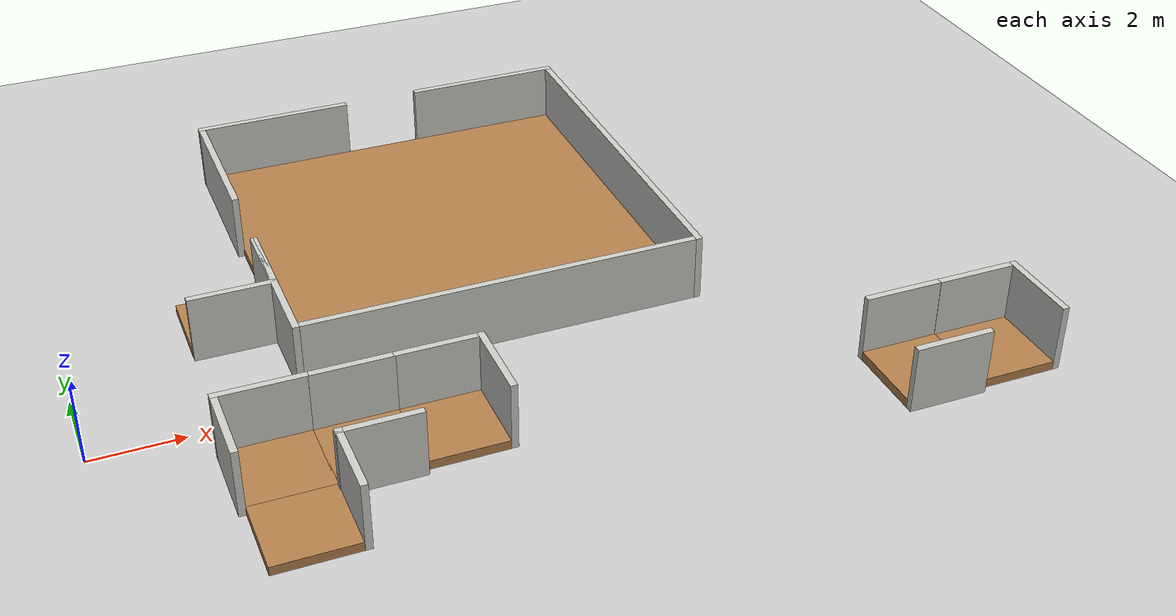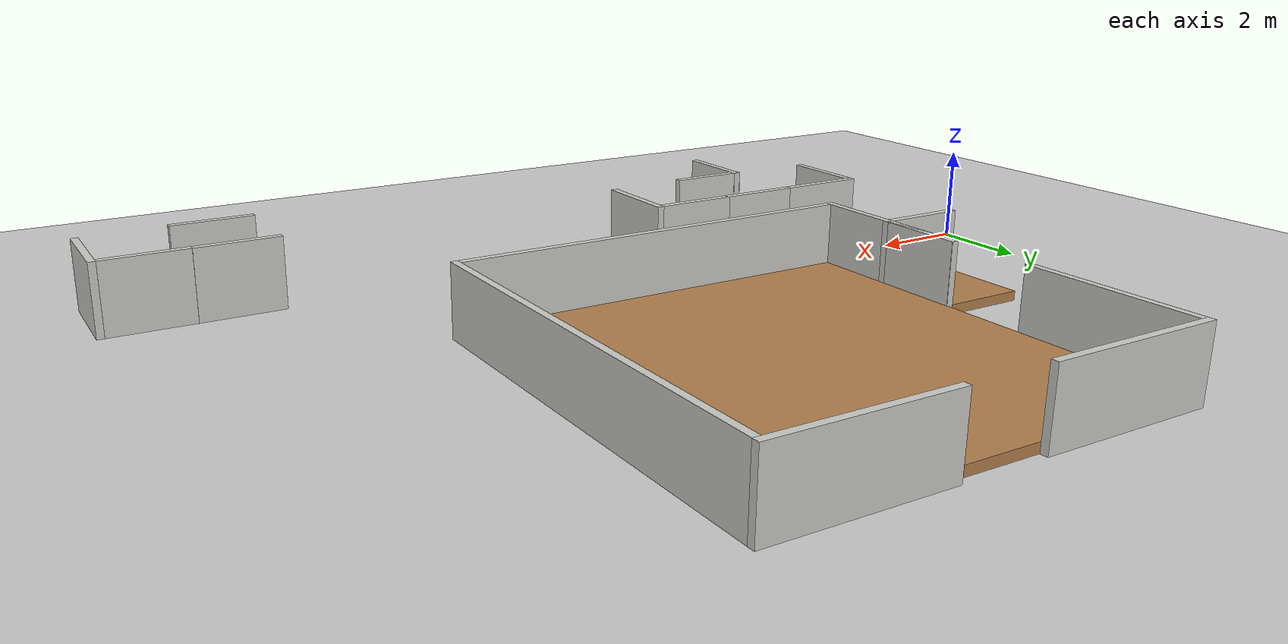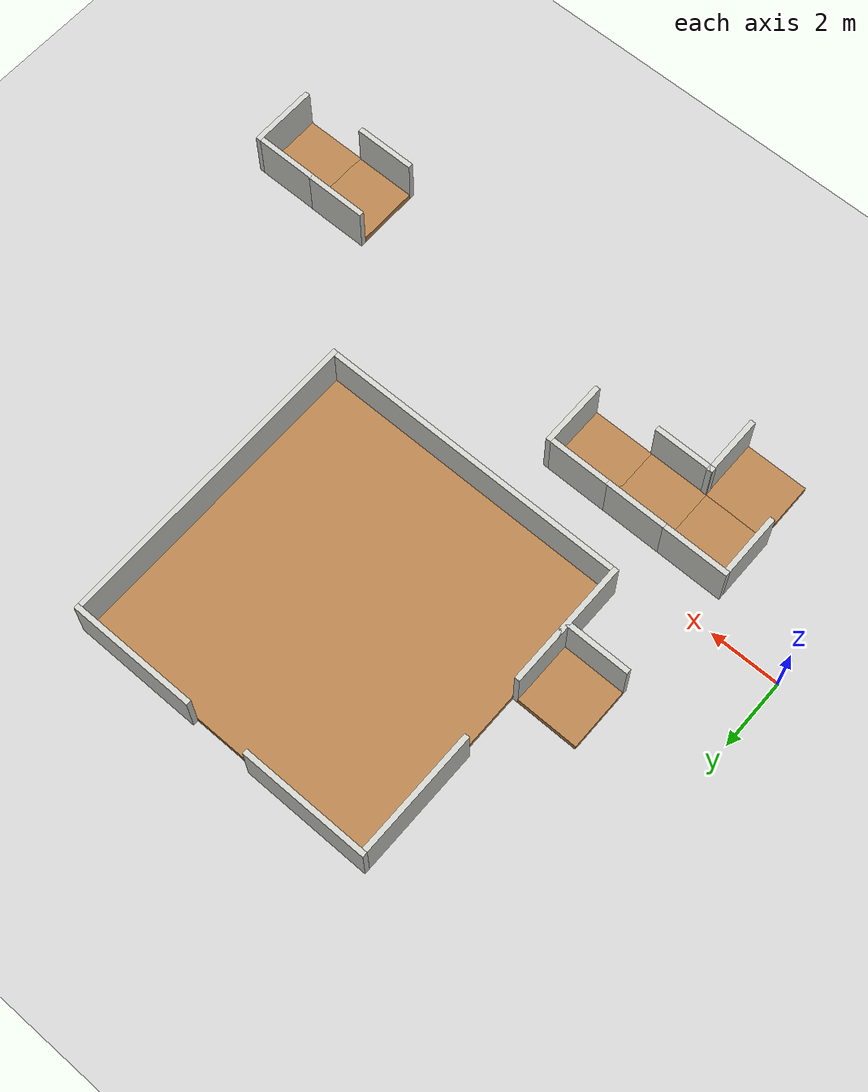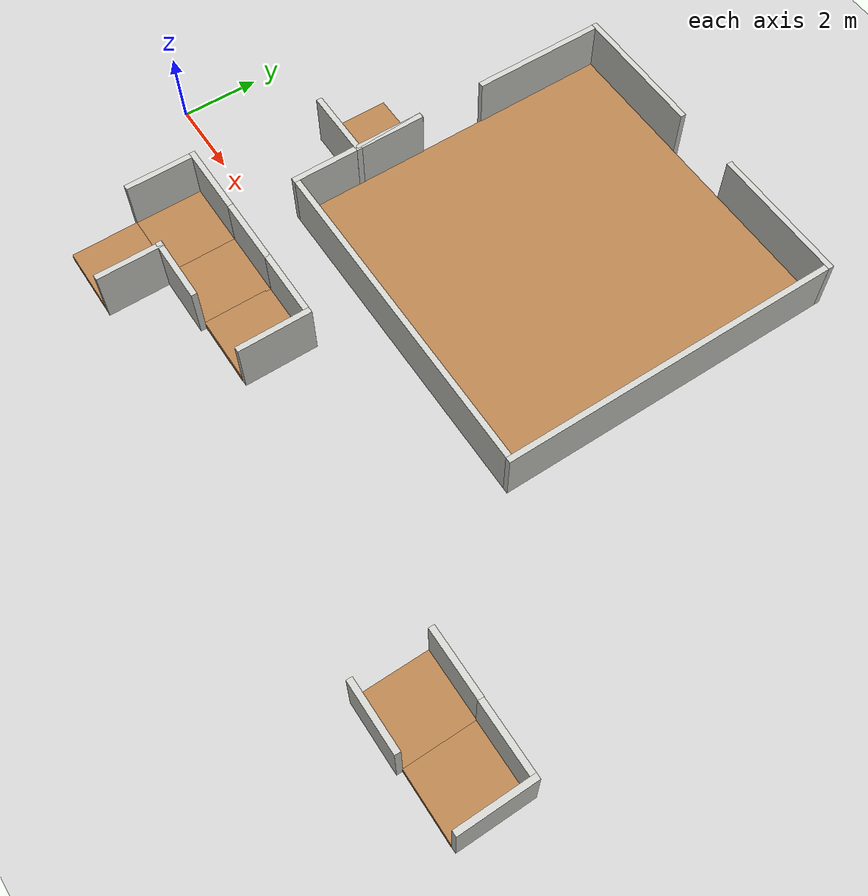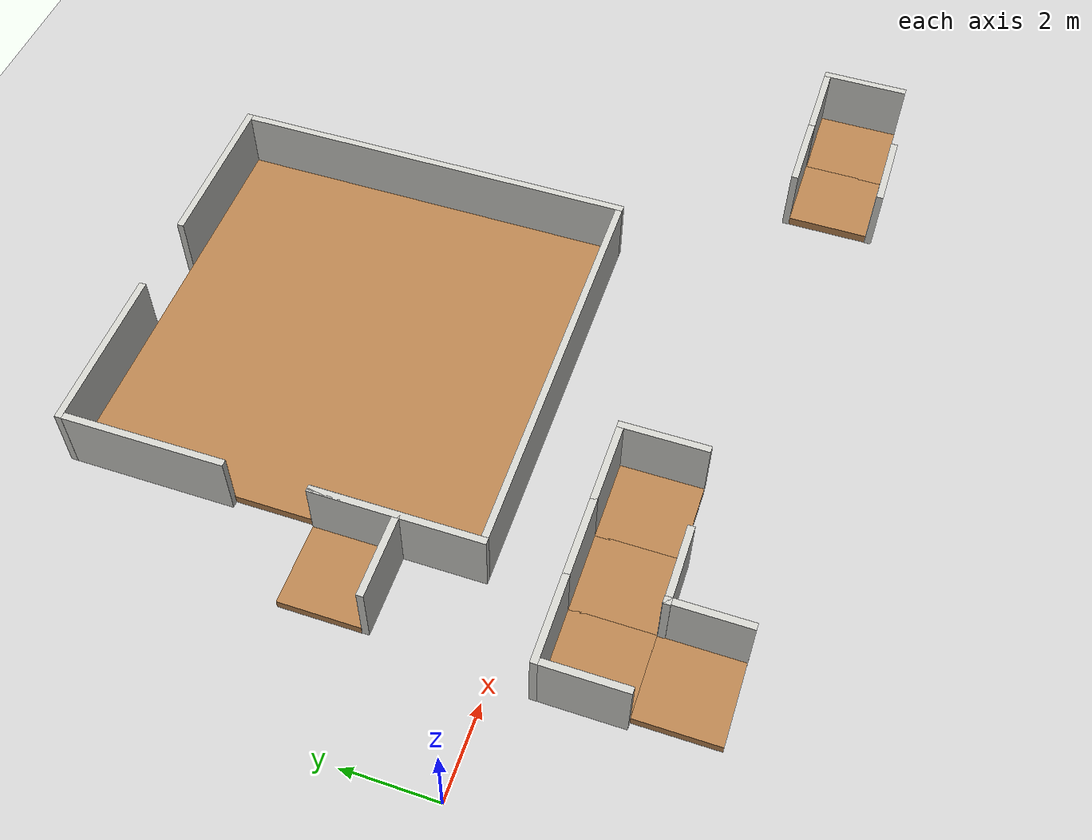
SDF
<sdf version="1.6">
 <world name="default">
  <model name="ground_plane">
   <static>1</static>
   <link name="link">
    <collision name="collision">
     <geometry><plane><normal>0 0 1</normal><size>100 100</size></plane></geometry>
     <surface><friction><ode><mu>100</mu><mu2>50</mu2></ode></friction></surface>
    </collision>
    <visual name="visual">
     <cast_shadows>0</cast_shadows>
     <geometry><plane><normal>0 0 1</normal><size>100 100</size></plane></geometry>
     <material>
      <script><uri>file://media/materials/scripts/gazebo.material</uri><name>Gazebo/Grey</name></script>
     </material>
    </visual>
   </link>
  </model>
  <model name="nerve_corner_clone">
   <pose>3.58423 3.42479 0 0 -0 3.14159</pose>
   <link name="Wall_0">
    <collision name="Wall_0_Collision">
     <geometry><box><size>1.76 1.75 0.2</size></box></geometry>
     <pose>0 0 0.1 0 -0 0</pose>
    </collision>
    <visual name="Wall_0_Visual">
     <pose>0 0 0.1 0 -0 0</pose>
     <geometry><box><size>1.76 1.75 0.2</size></box></geometry>
     <material>
      <script><uri>file://media/materials/scripts/gazebo.material</uri><name>Gazebo/Wood</name></script>
      <ambient>1 0.764706 0.305882 1</ambient>
     </material>
    </visual>
    <pose>0.077507 -0.077007 0 0 -0 3.14159</pose>
   </link>
   <link name="Wall_2">
    <collision name="Wall_2_Collision">
     <geometry><box><size>1.75 0.15 1.5</size></box></geometry>
     <pose>0 0 0.75 0 -0 0</pose>
    </collision>
    <visual name="Wall_2_Visual">
     <pose>0 0 0.75 0 -0 0</pose>
     <geometry><box><size>1.75 0.15 1.5</size></box></geometry>
     <material>
      <script><uri>file://media/materials/scripts/gazebo.material</uri><name>Gazebo/CeilingTiled</name></script>
      <ambient>1 0.764706 0.305882 1</ambient>
     </material>
    </visual>
    <pose>-0.882493 -0.073007 0 0 0 -1.5708</pose>
   </link>
   <link name="Wall_4">
    <collision name="Wall_4_Collision">
     <geometry><box><size>1.91042 0.15 1.5</size></box></geometry>
     <pose>0 0 0.75 0 -0 0</pose>
    </collision>
    <visual name="Wall_4_Visual">
     <pose>0 0 0.75 0 -0 0</pose>
     <geometry><box><size>1.91042 0.15 1.5</size></box></geometry>
     <material>
      <script><uri>file://media/materials/scripts/gazebo.material</uri><name>Gazebo/CeilingTiled</name></script>
      <ambient>1 0.764706 0.305882 1</ambient>
     </material>
    </visual>
    <pose>-0.002284 0.876825 0 0 -0 3.1414</pose>
   </link>
   <static>1</static>
  </model>
  <model name="nerve_onewall_clone_clone">
   <pose>3.48323 -3.56667 0 0 0 -3.14159</pose>
   <link name="Wall_0">
    <collision name="Wall_0_Collision">
     <geometry><box><size>1.76 1.75 0.2</size></box></geometry>
     <pose>0 0 0.1 0 -0 0</pose>
    </collision>
    <visual name="Wall_0_Visual">
     <pose>0 0 0.1 0 -0 0</pose>
     <geometry><box><size>1.76 1.75 0.2</size></box></geometry>
     <material>
      <script><uri>file://media/materials/scripts/gazebo.material</uri><name>Gazebo/Wood</name></script>
      <ambient>1 0.764706 0.305882 1</ambient>
     </material>
    </visual>
    <pose>0.0775 -0.002 0 0 -0 3.14159</pose>
   </link>
   <link name="Wall_2">
    <collision name="Wall_2_Collision">
     <geometry><box><size>1.75 0.15 1.5</size></box></geometry>
     <pose>0 0 0.75 0 -0 0</pose>
    </collision>
    <visual name="Wall_2_Visual">
     <pose>0 0 0.75 0 -0 0</pose>
     <geometry><box><size>1.75 0.15 1.5</size></box></geometry>
     <material>
      <script><uri>file://media/materials/scripts/gazebo.material</uri><name>Gazebo/CeilingTiled</name></script>
      <ambient>1 0.764706 0.305882 1</ambient>
     </material>
    </visual>
    <pose>-0.8825 0.002 0 0 0 -1.5708</pose>
   </link>
   <static>1</static>
  </model>
  <model name="nerve_corner_clone_clone_clone_clone_clone">
   <pose>3.33735 -1.74492 0 0 -0 5e-06</pose>
   <link name="Wall_0">
    <collision name="Wall_0_Collision">
     <geometry><box><size>1.76 1.75 0.2</size></box></geometry>
     <pose>0 0 0.1 0 -0 0</pose>
    </collision>
    <visual name="Wall_0_Visual">
     <pose>0 0 0.1 0 -0 0</pose>
     <geometry><box><size>1.76 1.75 0.2</size></box></geometry>
     <material>
      <script><uri>file://media/materials/scripts/gazebo.material</uri><name>Gazebo/Wood</name></script>
      <ambient>1 0.764706 0.305882 1</ambient>
     </material>
    </visual>
    <pose>0.077507 -0.077007 0 0 -0 3.14159</pose>
   </link>
   <link name="Wall_2">
    <collision name="Wall_2_Collision">
     <geometry><box><size>1.75 0.15 1.5</size></box></geometry>
     <pose>0 0 0.75 0 -0 0</pose>
    </collision>
    <visual name="Wall_2_Visual">
     <pose>0 0 0.75 0 -0 0</pose>
     <geometry><box><size>1.75 0.15 1.5</size></box></geometry>
     <material>
      <script><uri>file://media/materials/scripts/gazebo.material</uri><name>Gazebo/CeilingTiled</name></script>
      <ambient>1 0.764706 0.305882 1</ambient>
     </material>
    </visual>
    <pose>-0.882493 -0.073007 0 0 0 -1.5708</pose>
   </link>
   <link name="Wall_4">
    <collision name="Wall_4_Collision">
     <geometry><box><size>1.91042 0.15 1.5</size></box></geometry>
     <pose>0 0 0.75 0 -0 0</pose>
    </collision>
    <visual name="Wall_4_Visual">
     <pose>0 0 0.75 0 -0 0</pose>
     <geometry><box><size>1.91042 0.15 1.5</size></box></geometry>
     <material>
      <script><uri>file://media/materials/scripts/gazebo.material</uri><name>Gazebo/CeilingTiled</name></script>
      <ambient>1 0.764706 0.305882 1</ambient>
     </material>
    </visual>
    <pose>-0.002284 0.876825 0 0 -0 3.1414</pose>
   </link>
   <static>1</static>
  </model>
  <model name="nerve_corner_clone_clone_clone_clone_clone_0">
   <pose>6.94043 -1.74971 0 0 0 -1.57079</pose>
   <link name="Wall_0">
    <collision name="Wall_0_Collision">
     <geometry><box><size>1.76 1.75 0.2</size></box></geometry>
     <pose>0 0 0.1 0 -0 0</pose>
    </collision>
    <visual name="Wall_0_Visual">
     <pose>0 0 0.1 0 -0 0</pose>
     <geometry><box><size>1.76 1.75 0.2</size></box></geometry>
     <material>
      <script><uri>file://media/materials/scripts/gazebo.material</uri><name>Gazebo/Wood</name></script>
      <ambient>1 0.764706 0.305882 1</ambient>
     </material>
    </visual>
    <pose>0.077507 -0.077007 0 0 -0 3.14159</pose>
   </link>
   <link name="Wall_2">
    <collision name="Wall_2_Collision">
     <geometry><box><size>1.75 0.15 1.5</size></box></geometry>
     <pose>0 0 0.75 0 -0 0</pose>
    </collision>
    <visual name="Wall_2_Visual">
     <pose>0 0 0.75 0 -0 0</pose>
     <geometry><box><size>1.75 0.15 1.5</size></box></geometry>
     <material>
      <script><uri>file://media/materials/scripts/gazebo.material</uri><name>Gazebo/CeilingTiled</name></script>
      <ambient>1 0.764706 0.305882 1</ambient>
     </material>
    </visual>
    <pose>-0.882493 -0.073007 0 0 0 -1.5708</pose>
   </link>
   <link name="Wall_4">
    <collision name="Wall_4_Collision">
     <geometry><box><size>1.91042 0.15 1.5</size></box></geometry>
     <pose>0 0 0.75 0 -0 0</pose>
    </collision>
    <visual name="Wall_4_Visual">
     <pose>0 0 0.75 0 -0 0</pose>
     <geometry><box><size>1.91042 0.15 1.5</size></box></geometry>
     <material>
      <script><uri>file://media/materials/scripts/gazebo.material</uri><name>Gazebo/CeilingTiled</name></script>
      <ambient>1 0.764706 0.305882 1</ambient>
     </material>
    </visual>
    <pose>-0.002284 0.876825 0 0 -0 3.1414</pose>
   </link>
   <static>1</static>
  </model>
  <model name="nerve_straight_clone_0_clone_0_clone_1_clone_0">
   <pose>5.14668 -1.82337 0 0 0 -1.5708</pose>
   <link name="Wall_0">
    <collision name="Wall_0_Collision">
     <geometry><box><size>1.76 1.75 0.2</size></box></geometry>
     <pose>0 0 0.1 0 -0 0</pose>
    </collision>
    <visual name="Wall_0_Visual">
     <pose>0 0 0.1 0 -0 0</pose>
     <geometry><box><size>1.76 1.75 0.2</size></box></geometry>
     <material>
      <script><uri>file://media/materials/scripts/gazebo.material</uri><name>Gazebo/Wood</name></script>
      <ambient>1 0.764706 0.305882 1</ambient>
     </material>
    </visual>
    <pose>0.005 -0.002 0 0 -0 3.14159</pose>
   </link>
   <link name="Wall_2">
    <collision name="Wall_2_Collision">
     <geometry><box><size>1.75 0.15 1.5</size></box></geometry>
     <pose>0 0 0.75 0 -0 0</pose>
    </collision>
    <visual name="Wall_2_Visual">
     <pose>0 0 0.75 0 -0 0</pose>
     <geometry><box><size>1.75 0.15 1.5</size></box></geometry>
     <material>
      <script><uri>file://media/materials/scripts/gazebo.material</uri><name>Gazebo/CeilingTiled</name></script>
      <ambient>1 0.764706 0.305882 1</ambient>
     </material>
    </visual>
    <pose>-0.955 0.002 0 0 0 -1.5708</pose>
   </link>
   <link name="Wall_4">
    <collision name="Wall_4_Collision">
     <geometry><box><size>1.75 0.15 1.5</size></box></geometry>
     <pose>0 0 0.75 0 -0 0</pose>
    </collision>
    <visual name="Wall_4_Visual">
     <pose>0 0 0.75 0 -0 0</pose>
     <geometry><box><size>1.75 0.15 1.5</size></box></geometry>
     <material>
      <script><uri>file://media/materials/scripts/gazebo.material</uri><name>Gazebo/CeilingTiled</name></script>
      <ambient>1 0.764706 0.305882 1</ambient>
     </material>
    </visual>
    <pose>0.955 0.002 0 0 0 -1.5708</pose>
   </link>
   <static>1</static>
  </model>
  <model name="nerve_corner_clone_clone_1_clone_clone">
   <pose>18.2036 -3.50554 0 0 0 -1.57079</pose>
   <link name="Wall_0">
    <collision name="Wall_0_Collision">
     <geometry><box><size>1.76 1.75 0.2</size></box></geometry>
     <pose>0 0 0.1 0 -0 0</pose>
    </collision>
    <visual name="Wall_0_Visual">
     <pose>0 0 0.1 0 -0 0</pose>
     <geometry><box><size>1.76 1.75 0.2</size></box></geometry>
     <material>
      <script><uri>file://media/materials/scripts/gazebo.material</uri><name>Gazebo/Wood</name></script>
      <ambient>1 0.764706 0.305882 1</ambient>
     </material>
    </visual>
    <pose>0.077507 -0.077007 0 0 -0 3.14159</pose>
   </link>
   <link name="Wall_2">
    <collision name="Wall_2_Collision">
     <geometry><box><size>1.75 0.15 1.5</size></box></geometry>
     <pose>0 0 0.75 0 -0 0</pose>
    </collision>
    <visual name="Wall_2_Visual">
     <pose>0 0 0.75 0 -0 0</pose>
     <geometry><box><size>1.75 0.15 1.5</size></box></geometry>
     <material>
      <script><uri>file://media/materials/scripts/gazebo.material</uri><name>Gazebo/CeilingTiled</name></script>
      <ambient>1 0.764706 0.305882 1</ambient>
     </material>
    </visual>
    <pose>-0.882493 -0.073007 0 0 0 -1.5708</pose>
   </link>
   <link name="Wall_4">
    <collision name="Wall_4_Collision">
     <geometry><box><size>1.91042 0.15 1.5</size></box></geometry>
     <pose>0 0 0.75 0 -0 0</pose>
    </collision>
    <visual name="Wall_4_Visual">
     <pose>0 0 0.75 0 -0 0</pose>
     <geometry><box><size>1.91042 0.15 1.5</size></box></geometry>
     <material>
      <script><uri>file://media/materials/scripts/gazebo.material</uri><name>Gazebo/CeilingTiled</name></script>
      <ambient>1 0.764706 0.305882 1</ambient>
     </material>
    </visual>
    <pose>-0.002284 0.876825 0 0 -0 3.1414</pose>
   </link>
   <static>1</static>
  </model>
  <model name="nerve_straight_clone_0_clone_clone_clone_2_clone_clone">
   <pose>16.4 -3.57133 0 0 -0 1.57079</pose>
   <link name="Wall_0">
    <collision name="Wall_0_Collision">
     <geometry><box><size>1.76 1.75 0.2</size></box></geometry>
     <pose>0 0 0.1 0 -0 0</pose>
    </collision>
    <visual name="Wall_0_Visual">
     <pose>0 0 0.1 0 -0 0</pose>
     <geometry><box><size>1.76 1.75 0.2</size></box></geometry>
     <material>
      <script><uri>file://media/materials/scripts/gazebo.material</uri><name>Gazebo/Wood</name></script>
      <ambient>1 0.764706 0.305882 1</ambient>
     </material>
    </visual>
    <pose>0.005 -0.002 0 0 -0 3.14159</pose>
   </link>
   <link name="Wall_2">
    <collision name="Wall_2_Collision">
     <geometry><box><size>1.75 0.15 1.5</size></box></geometry>
     <pose>0 0 0.75 0 -0 0</pose>
    </collision>
    <visual name="Wall_2_Visual">
     <pose>0 0 0.75 0 -0 0</pose>
     <geometry><box><size>1.75 0.15 1.5</size></box></geometry>
     <material>
      <script><uri>file://media/materials/scripts/gazebo.material</uri><name>Gazebo/CeilingTiled</name></script>
      <ambient>1 0.764706 0.305882 1</ambient>
     </material>
    </visual>
    <pose>-0.955 0.002 0 0 0 -1.5708</pose>
   </link>
   <link name="Wall_4">
    <collision name="Wall_4_Collision">
     <geometry><box><size>1.75 0.15 1.5</size></box></geometry>
     <pose>0 0 0.75 0 -0 0</pose>
    </collision>
    <visual name="Wall_4_Visual">
     <pose>0 0 0.75 0 -0 0</pose>
     <geometry><box><size>1.75 0.15 1.5</size></box></geometry>
     <material>
      <script><uri>file://media/materials/scripts/gazebo.material</uri><name>Gazebo/CeilingTiled</name></script>
      <ambient>1 0.764706 0.305882 1</ambient>
     </material>
    </visual>
    <pose>0.955 0.002 0 0 0 -1.5708</pose>
   </link>
   <static>1</static>
  </model>
  <model name="nerve_room_5x5ARENA_right_clone">
   <pose>8.91265 5.25697 0 0 0 -1.57</pose>
   <link name="Wall_11">
    <collision name="Wall_11_Collision">
     <geometry><box><size>8.75 0.15 1.5</size></box></geometry>
     <pose>0 0 0.75 0 -0 0</pose>
    </collision>
    <visual name="Wall_11_Visual">
     <pose>0 0 0.75 0 -0 0</pose>
     <geometry><box><size>8.75 0.15 1.5</size></box></geometry>
     <material>
      <script><uri>file://media/materials/scripts/gazebo.material</uri><name>Gazebo/CeilingTiled</name></script>
      <ambient>1 0.764706 0.305882 1</ambient>
     </material>
    </visual>
    <pose>4.44912 -0.000431 0 0 0 -1.5708</pose>
   </link>
   <link name="Wall_13">
    <collision name="Wall_13_Collision">
     <geometry><box><size>3.65 0.15 1.5</size></box></geometry>
     <pose>0 0 0.75 0 -0 0</pose>
    </collision>
    <visual name="Wall_13_Visual">
     <pose>0 0 0.75 0 -0 0</pose>
     <geometry><box><size>3.65 0.15 1.5</size></box></geometry>
     <material>
      <script><uri>file://media/materials/scripts/gazebo.material</uri><name>Gazebo/CeilingTiled</name></script>
      <ambient>1 0.764706 0.305882 1</ambient>
     </material>
    </visual>
    <pose>-4.44961 2.70076 0 0 0 -1.5708</pose>
   </link>
   <link name="Wall_15">
    <collision name="Wall_15_Collision">
     <geometry><box><size>3.65 0.15 1.5</size></box></geometry>
     <pose>0 0 0.75 0 -0 0</pose>
    </collision>
    <visual name="Wall_15_Visual">
     <pose>0 0 0.75 0 -0 0</pose>
     <geometry><box><size>3.65 0.15 1.5</size></box></geometry>
     <material>
      <script><uri>file://media/materials/scripts/gazebo.material</uri><name>Gazebo/CeilingTiled</name></script>
      <ambient>1 0.764706 0.305882 1</ambient>
     </material>
    </visual>
    <pose>2.69961 -4.45076 0 0 -0 0</pose>
   </link>
   <link name="Wall_17">
    <collision name="Wall_17_Collision">
     <geometry><box><size>8.90028 0.15 1.5</size></box></geometry>
     <pose>0 0 0.75 0 -0 0</pose>
    </collision>
    <visual name="Wall_17_Visual">
     <pose>0 0 0.75 0 -0 0</pose>
     <geometry><box><size>8.90028 0.15 1.5</size></box></geometry>
     <material>
      <script><uri>file://media/materials/scripts/gazebo.material</uri><name>Gazebo/CeilingTiled</name></script>
      <ambient>1 0.764706 0.305882 1</ambient>
     </material>
    </visual>
    <pose>0.074346 4.45022 0 0 0 -6.5e-05</pose>
   </link>
   <link name="Wall_21">
    <collision name="Wall_21_Collision">
     <geometry><box><size>3.5 0.15 1.5</size></box></geometry>
     <pose>0 0 0.75 0 -0 0</pose>
    </collision>
    <visual name="Wall_21_Visual">
     <pose>0 0 0.75 0 -0 0</pose>
     <geometry><box><size>3.5 0.15 1.5</size></box></geometry>
     <material>
      <script><uri>file://media/materials/scripts/gazebo.material</uri><name>Gazebo/CeilingTiled</name></script>
      <ambient>1 0.764706 0.305882 1</ambient>
     </material>
    </visual>
    <pose>-2.62383 -4.4498 0 0 -0 0</pose>
   </link>
   <link name="Wall_25">
    <collision name="Wall_25_Collision">
     <geometry><box><size>3.65 0.15 1.5</size></box></geometry>
     <pose>0 0 0.75 0 -0 0</pose>
    </collision>
    <visual name="Wall_25_Visual">
     <pose>0 0 0.75 0 -0 0</pose>
     <geometry><box><size>3.65 0.15 1.5</size></box></geometry>
     <material>
      <script><uri>file://media/materials/scripts/gazebo.material</uri><name>Gazebo/CeilingTiled</name></script>
      <ambient>1 0.764706 0.305882 1</ambient>
     </material>
    </visual>
    <pose>-4.44941 -2.70044 0 0 0 -1.5708</pose>
   </link>
   <link name="Wall_6">
    <collision name="Wall_6_Collision">
     <geometry><box><size>8.76 8.75 0.2</size></box></geometry>
     <pose>0 0 0.1 0 -0 0</pose>
    </collision>
    <visual name="Wall_6_Visual">
     <pose>0 0 0.1 0 -0 0</pose>
     <geometry><box><size>8.76 8.75 0.2</size></box></geometry>
     <material>
      <script><uri>file://media/materials/scripts/gazebo.material</uri><name>Gazebo/Wood</name></script>
      <ambient>1 0.764706 0.305882 1</ambient>
     </material>
    </visual>
    <pose>0.000485 -0.004173 0 0 -0 1.5708</pose>
   </link>
   <static>1</static>
  </model>
 </world>
</sdf>
